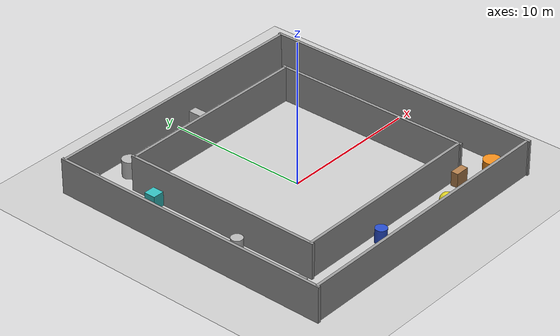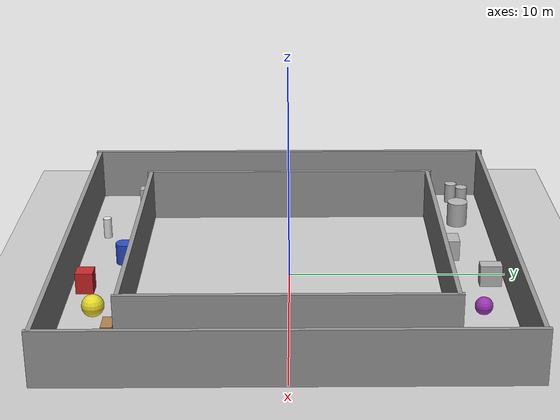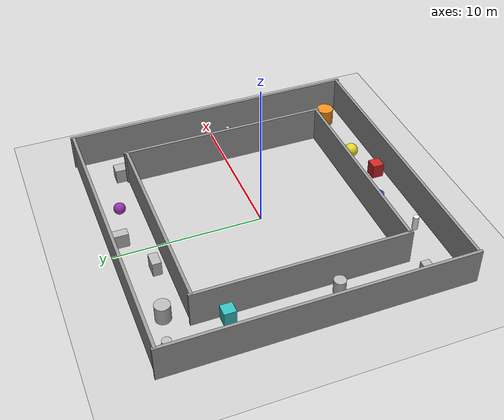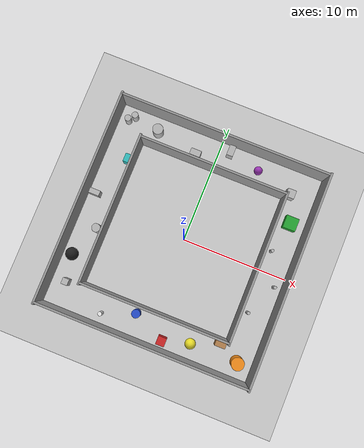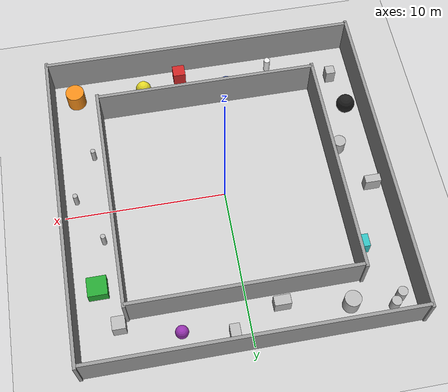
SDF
<?xml version="1.0" ?>
<sdf version="1.7">
  <world name="cluttered_loop_closure_world">

    <include><uri>model://sun</uri></include>
    <include><uri>model://ground_plane</uri></include>

    <!-- HÀNH LANG VÒNG LẶP KÍN (20x20m vòng ngoài, 14x14m vòng trong) -->
    <model name="loop_corridor">
      <static>true</static>
      <link name="walls">
        <collision name="out_n"><pose>0 10 1.25 0 0 0</pose><geometry><box><size>20 0.2 2.5</size></box></geometry></collision>
        <visual name="out_n_v"><pose>0 10 1.25 0 0 0</pose><geometry><box><size>20 0.2 2.5</size></box></geometry><material><script><uri>file://media/materials/scripts/gazebo.material</uri><name>Gazebo/Grey</name></script></material></visual>

        <collision name="out_s"><pose>0 -10 1.25 0 0 0</pose><geometry><box><size>20 0.2 2.5</size></box></geometry></collision>
        <visual name="out_s_v"><pose>0 -10 1.25 0 0 0</pose><geometry><box><size>20 0.2 2.5</size></box></geometry><material><script><uri>file://media/materials/scripts/gazebo.material</uri><name>Gazebo/Grey</name></script></material></visual>

        <collision name="out_e"><pose>10 0 1.25 0 0 0</pose><geometry><box><size>0.2 20.4 2.5</size></box></geometry></collision>
        <visual name="out_e_v"><pose>10 0 1.25 0 0 0</pose><geometry><box><size>0.2 20.4 2.5</size></box></geometry><material><script><uri>file://media/materials/scripts/gazebo.material</uri><name>Gazebo/Grey</name></script></material></visual>

        <collision name="out_w"><pose>-10 0 1.25 0 0 0</pose><geometry><box><size>0.2 20.4 2.5</size></box></geometry></collision>
        <visual name="out_w_v"><pose>-10 0 1.25 0 0 0</pose><geometry><box><size>0.2 20.4 2.5</size></box></geometry><material><script><uri>file://media/materials/scripts/gazebo.material</uri><name>Gazebo/Grey</name></script></material></visual>

        <collision name="in_n"><pose>0 7 1.25 0 0 0</pose><geometry><box><size>14 0.2 2.5</size></box></geometry></collision>
        <visual name="in_n_v"><pose>0 7 1.25 0 0 0</pose><geometry><box><size>14 0.2 2.5</size></box></geometry><material><script><uri>file://media/materials/scripts/gazebo.material</uri><name>Gazebo/Grey</name></script></material></visual>

        <collision name="in_s"><pose>0 -7 1.25 0 0 0</pose><geometry><box><size>14 0.2 2.5</size></box></geometry></collision>
        <visual name="in_s_v"><pose>0 -7 1.25 0 0 0</pose><geometry><box><size>14 0.2 2.5</size></box></geometry><material><script><uri>file://media/materials/scripts/gazebo.material</uri><name>Gazebo/Grey</name></script></material></visual>

        <collision name="in_e"><pose>7 0 1.25 0 0 0</pose><geometry><box><size>0.2 14.4 2.5</size></box></geometry></collision>
        <visual name="in_e_v"><pose>7 0 1.25 0 0 0</pose><geometry><box><size>0.2 14.4 2.5</size></box></geometry><material><script><uri>file://media/materials/scripts/gazebo.material</uri><name>Gazebo/Grey</name></script></material></visual>

        <collision name="in_w"><pose>-7 0 1.25 0 0 0</pose><geometry><box><size>0.2 14.4 2.5</size></box></geometry></collision>
        <visual name="in_w_v"><pose>-7 0 1.25 0 0 0</pose><geometry><box><size>0.2 14.4 2.5</size></box></geometry><material><script><uri>file://media/materials/scripts/gazebo.material</uri><name>Gazebo/Grey</name></script></material></visual>
      </link>
    </model>

    <!-- MỚI: BÃI VẬT CẢN DÀY ĐẶC (CLUTTER) -->
    <model name="heavy_clutter">
      <static>true</static>
      <link name="objects">

        <!-- ================= HÀNH LANG PHÍA NAM (Khởi đầu) ================= -->
        <!-- Robot thường bắt đầu ở (0, -8.5). Gắn cụm đặc trưng ở đây để dễ nhận diện khi về đích -->
        <visual name="start_mark1"><pose>1.5 -9.2 0.5 0 0 0</pose><geometry><box><size>0.8 0.8 1.0</size></box></geometry><material><script><uri>file://media/materials/scripts/gazebo.material</uri><name>Gazebo/Red</name></script></material></visual>
        <collision name="start_c1"><pose>1.5 -9.2 0.5 0 0 0</pose><geometry><box><size>0.8 0.8 1.0</size></box></geometry></collision>

        <visual name="start_mark2"><pose>-1.5 -7.8 0.5 0 0 0</pose><geometry><cylinder><radius>0.4</radius><length>1.0</length></cylinder></geometry><material><script><uri>file://media/materials/scripts/gazebo.material</uri><name>Gazebo/Blue</name></script></material></visual>
        <collision name="start_c2"><pose>-1.5 -7.8 0.5 0 0 0</pose><geometry><cylinder><radius>0.4</radius><length>1.0</length></cylinder></geometry></collision>

        <visual name="s1"><pose>4 -8.5 0.5 0 0 0</pose><geometry><sphere><radius>0.5</radius></sphere></geometry><material><script><uri>file://media/materials/scripts/gazebo.material</uri><name>Gazebo/Yellow</name></script></material></visual>
        <collision name="sc1"><pose>4 -8.5 0.5 0 0 0</pose><geometry><sphere><radius>0.5</radius></sphere></geometry></collision>

        <visual name="s2"><pose>6.5 -7.5 0.5 0 0 0</pose><geometry><box><size>1.0 0.5 1.0</size></box></geometry><material><script><uri>file://media/materials/scripts/gazebo.material</uri><name>Gazebo/Wood</name></script></material></visual>
        <collision name="sc2"><pose>6.5 -7.5 0.5 0 0 0</pose><geometry><box><size>1.0 0.5 1.0</size></box></geometry></collision>

        <visual name="s3"><pose>-4.5 -9.0 0.5 0 0 0</pose><geometry><cylinder><radius>0.2</radius><length>1.0</length></cylinder></geometry><material><script><uri>file://media/materials/scripts/gazebo.material</uri><name>Gazebo/White</name></script></material></visual>
        <collision name="sc3"><pose>-4.5 -9.0 0.5 0 0 0</pose><geometry><cylinder><radius>0.2</radius><length>1.0</length></cylinder></geometry></collision>

        <!-- ================= GÓC CUA ĐÔNG NAM (Ép lượn) ================= -->
        <visual name="se_corner"><pose>8.5 -8.5 0.6 0 0 0</pose><geometry><cylinder><radius>0.6</radius><length>1.2</length></cylinder></geometry><material><script><uri>file://media/materials/scripts/gazebo.material</uri><name>Gazebo/Orange</name></script></material></visual>
        <collision name="sec_corner"><pose>8.5 -8.5 0.6 0 0 0</pose><geometry><cylinder><radius>0.6</radius><length>1.2</length></cylinder></geometry></collision>

        <!-- ================= HÀNH LANG PHÍA ĐÔNG (Rừng cột nhỏ) ================= -->
        <!-- Các cột trụ nhỏ xếp sole gây khó cho LiDAR -->
        <visual name="e1"><pose>7.8 -4 0.5 0 0 0</pose><geometry><cylinder><radius>0.15</radius><length>1.0</length></cylinder></geometry></visual>
        <collision name="ec1"><pose>7.8 -4 0.5 0 0 0</pose><geometry><cylinder><radius>0.15</radius><length>1.0</length></cylinder></geometry></collision>

        <visual name="e2"><pose>9.2 -1 0.5 0 0 0</pose><geometry><cylinder><radius>0.15</radius><length>1.0</length></cylinder></geometry></visual>
        <collision name="ec2"><pose>9.2 -1 0.5 0 0 0</pose><geometry><cylinder><radius>0.15</radius><length>1.0</length></cylinder></geometry></collision>

        <visual name="e3"><pose>7.8 2 0.5 0 0 0</pose><geometry><cylinder><radius>0.15</radius><length>1.0</length></cylinder></geometry></visual>
        <collision name="ec3"><pose>7.8 2 0.5 0 0 0</pose><geometry><cylinder><radius>0.15</radius><length>1.0</length></cylinder></geometry></collision>

        <visual name="e4"><pose>8.5 5 0.4 0 0 0</pose><geometry><box><size>1.2 1.2 0.8</size></box></geometry><material><script><uri>file://media/materials/scripts/gazebo.material</uri><name>Gazebo/Green</name></script></material></visual>
        <collision name="ec4"><pose>8.5 5 0.4 0 0 0</pose><geometry><box><size>1.2 1.2 0.8</size></box></geometry></collision>

        <!-- ================= GÓC CUA ĐÔNG BẮC ================= -->
        <visual name="ne_corner"><pose>7.5 7.5 0.5 0 0 0</pose><geometry><box><size>0.8 0.8 1.0</size></box></geometry></visual>
        <collision name="nec_corner"><pose>7.5 7.5 0.5 0 0 0</pose><geometry><box><size>0.8 0.8 1.0</size></box></geometry></collision>

        <!-- ================= HÀNH LANG PHÍA BẮC (Chướng ngại vật ngẫu nhiên) ================= -->
        <visual name="n1"><pose>4 8.5 0.4 0 0 0</pose><geometry><sphere><radius>0.4</radius></sphere></geometry><material><script><uri>file://media/materials/scripts/gazebo.material</uri><name>Gazebo/Purple</name></script></material></visual>
        <collision name="nc1"><pose>4 8.5 0.4 0 0 0</pose><geometry><sphere><radius>0.4</radius></sphere></geometry></collision>

        <visual name="n2"><pose>1 9.2 0.5 0 0 0</pose><geometry><box><size>0.6 1.0 1.0</size></box></geometry></visual>
        <collision name="nc2"><pose>1 9.2 0.5 0 0 0</pose><geometry><box><size>0.6 1.0 1.0</size></box></geometry></collision>

        <visual name="n3"><pose>-2 7.8 0.5 0 0 0</pose><geometry><box><size>1.0 0.6 1.0</size></box></geometry></visual>
        <collision name="nc3"><pose>-2 7.8 0.5 0 0 0</pose><geometry><box><size>1.0 0.6 1.0</size></box></geometry></collision>

        <visual name="n4"><pose>-6 8.5 0.6 0 0 0</pose><geometry><cylinder><radius>0.5</radius><length>1.2</length></cylinder></geometry></visual>
        <collision name="nc4"><pose>-6 8.5 0.6 0 0 0</pose><geometry><cylinder><radius>0.5</radius><length>1.2</length></cylinder></geometry></collision>

        <!-- ================= GÓC CUA TÂY BẮC ================= -->
        <visual name="nw_corner1"><pose>-8.5 9.0 0.5 0 0 0</pose><geometry><cylinder><radius>0.3</radius><length>1.0</length></cylinder></geometry></visual>
        <collision name="nwc_corner1"><pose>-8.5 9.0 0.5 0 0 0</pose><geometry><cylinder><radius>0.3</radius><length>1.0</length></cylinder></geometry></collision>

        <visual name="nw_corner2"><pose>-9.0 8.5 0.5 0 0 0</pose><geometry><cylinder><radius>0.3</radius><length>1.0</length></cylinder></geometry></visual>
        <collision name="nwc_corner2"><pose>-9.0 8.5 0.5 0 0 0</pose><geometry><cylinder><radius>0.3</radius><length>1.0</length></cylinder></geometry></collision>

        <!-- ================= HÀNH LANG PHÍA TÂY (Zig-zag) ================= -->
        <!-- Đặt so le để robot phải đi lượn vòng -->
        <visual name="w1"><pose>-7.5 5 0.5 0 0 0</pose><geometry><box><size>0.8 0.8 1.0</size></box></geometry><material><script><uri>file://media/materials/scripts/gazebo.material</uri><name>Gazebo/Turquoise</name></script></material></visual>
        <collision name="wc1"><pose>-7.5 5 0.5 0 0 0</pose><geometry><box><size>0.8 0.8 1.0</size></box></geometry></collision>

        <visual name="w2"><pose>-9.2 1 0.5 0 0 0</pose><geometry><box><size>1.0 0.5 1.0</size></box></geometry></visual>
        <collision name="wc2"><pose>-9.2 1 0.5 0 0 0</pose><geometry><box><size>1.0 0.5 1.0</size></box></geometry></collision>

        <visual name="w3"><pose>-7.8 -2 0.5 0 0 0</pose><geometry><cylinder><radius>0.4</radius><length>1.0</length></cylinder></geometry></visual>
        <collision name="wc3"><pose>-7.8 -2 0.5 0 0 0</pose><geometry><cylinder><radius>0.4</radius><length>1.0</length></cylinder></geometry></collision>

        <visual name="w4"><pose>-9.0 -5 0.5 0 0 0</pose><geometry><sphere><radius>0.6</radius></sphere></geometry><material><script><uri>file://media/materials/scripts/gazebo.material</uri><name>Gazebo/Black</name></script></material></visual>
        <collision name="wc4"><pose>-9.0 -5 0.5 0 0 0</pose><geometry><sphere><radius>0.6</radius></sphere></geometry></collision>

        <!-- ================= GÓC CUA TÂY NAM (Về đích) ================= -->
        <visual name="sw_corner"><pose>-8.5 -7.5 0.5 0 0 0</pose><geometry><box><size>0.6 0.6 1.0</size></box></geometry></visual>
        <collision name="swc_corner"><pose>-8.5 -7.5 0.5 0 0 0</pose><geometry><box><size>0.6 0.6 1.0</size></box></geometry></collision>

      </link>
    </model>

  </world>
</sdf>
